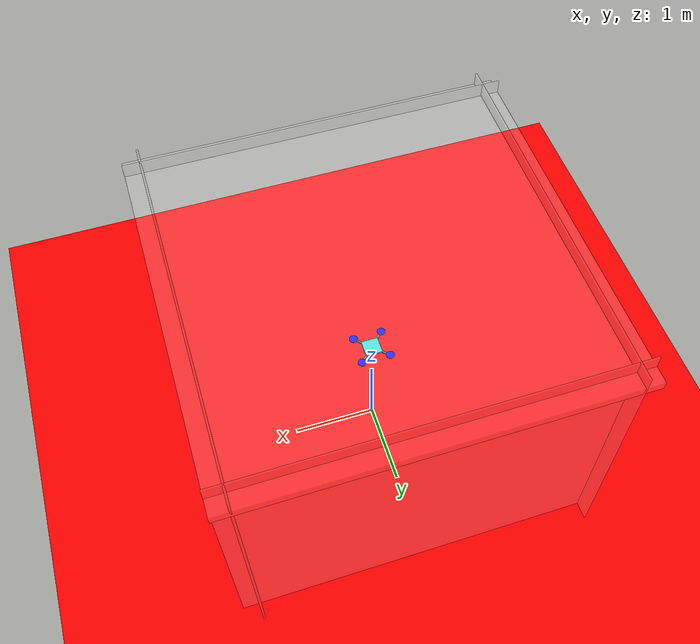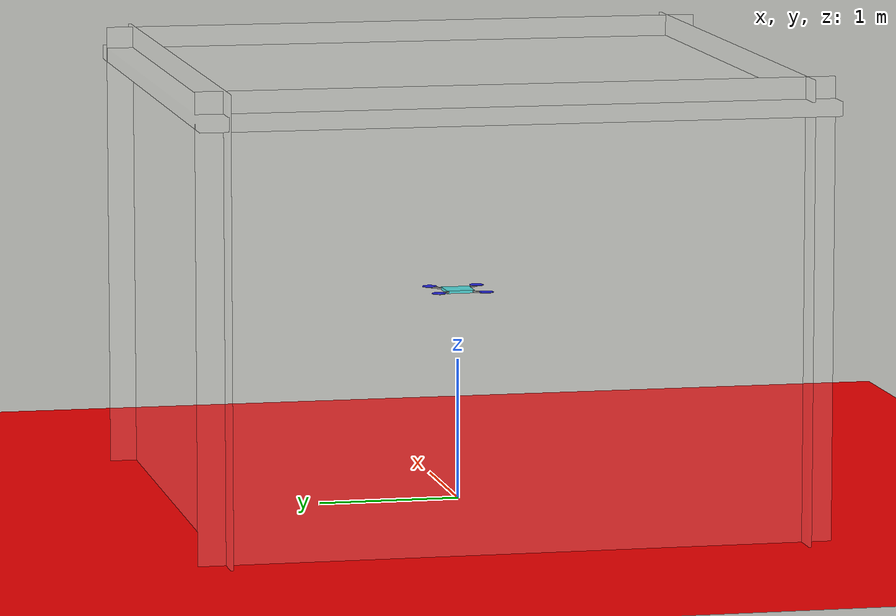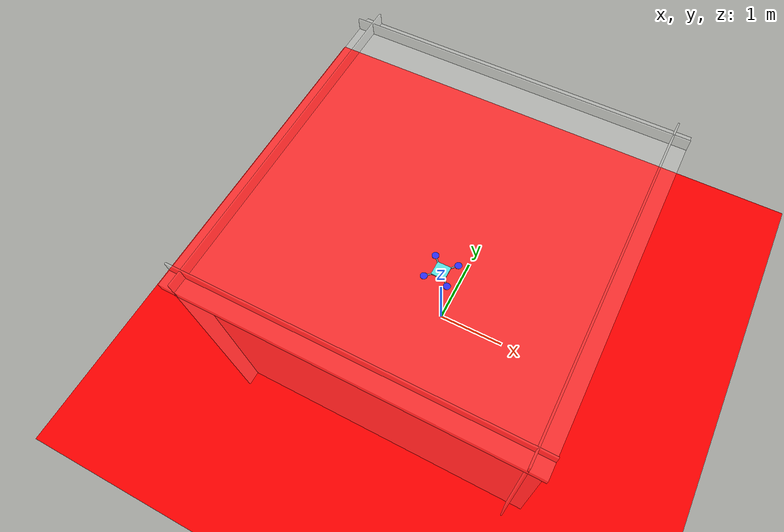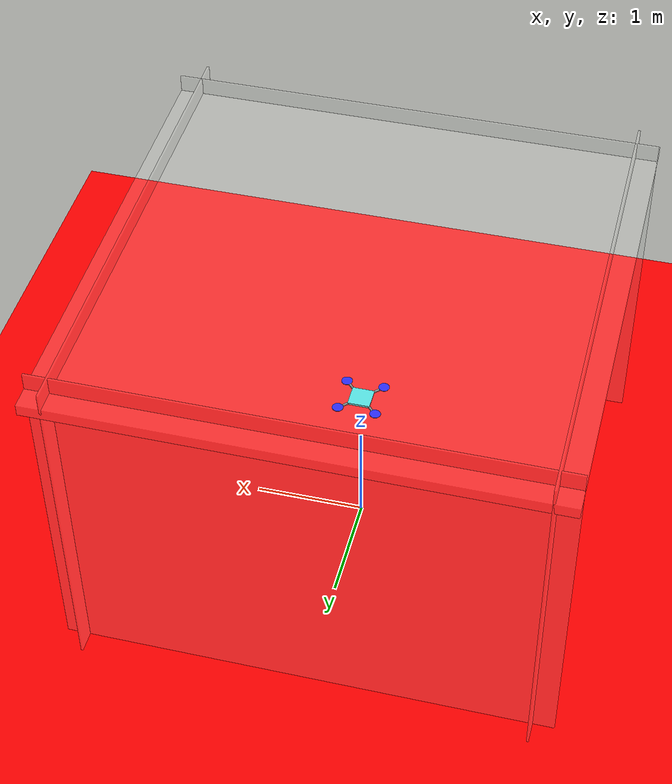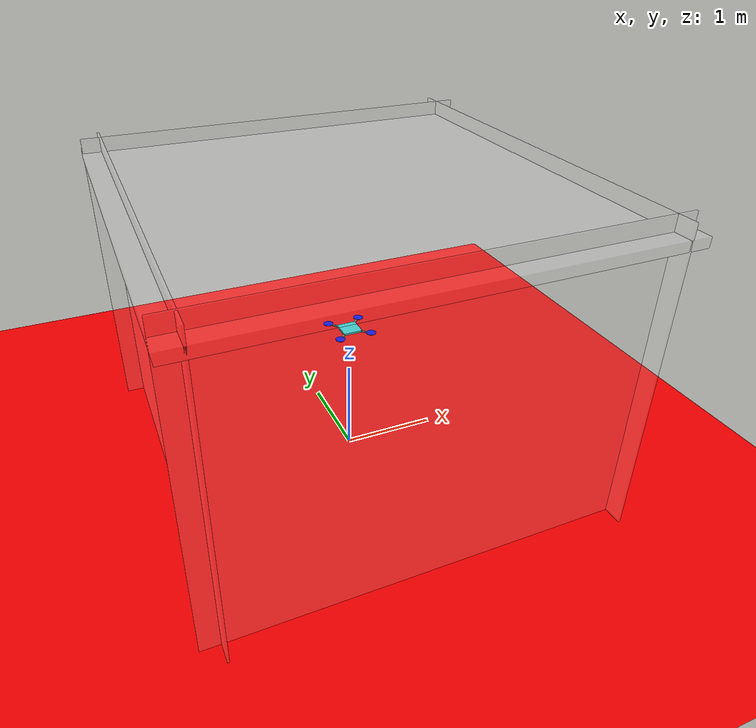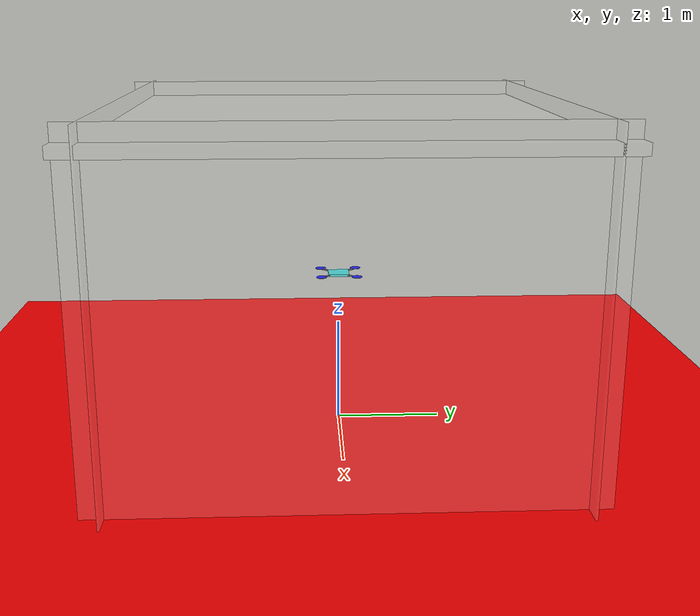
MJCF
<mujoco model="quadrotor">
    <compiler inertiafromgeom="true"/>
    <asset>
        <texture type="skybox" builtin="gradient" rgb1="1 1 1"
            rgb2=".6 .8 1" width="256" height="256"/>
    </asset>
    <visual>
        <global offwidth='1920' offheight='1080'/>
    </visual>
    <option timestep="0.01" density="1.2" gravity="0 0 -9.81"/>
    <worldbody>
        <light pos="5 5 6" dir="-1 -1 -1" castshadow="false" diffuse=".3 .3 .3"/>
        <light pos="-5 -5 6" dir="1 1 -1" castshadow="false" diffuse=".3 .3 .3"/>

        <geom name="floor" type="plane" size="5 5 .1" rgba="1 0 0 .5"/>

        <camera name="fixed_camera" mode="fixed" pos="-11 0 7" euler="0 -65 -90"/>

        <!-- Walls -->
        <body pos="0 0 3" name="roof">
            <geom type="box" size="2.2 2.2 .05" rgba="1 1 1 0.2"/>
        </body>
        <body pos="0 2 1.5" name="wall1">
            <geom type="box" size="2.2 0.01 1.7" rgba="1 1 1 0.2"/>
        </body>
        <body pos="0 -2 1.5" name="wall2">
            <geom type="box" size="2.2 0.01 1.7" rgba="1 1 1 0.2"/>
        </body>
        <body pos="2 0 1.5" name="wall3">
            <geom type="box" size="0.01 2.2 1.7" rgba="1 1 1 0.2"/>
        </body>
        <body pos="-2 0 1.5" name="wall4">
            <geom type="box" size="0.01 2.2 1.7" rgba="1 1 1 0.2"/>
        </body>

        <!-- Quadrotor -->
        <body pos="0 0 1.5" name="quad">
            <joint type="free" pos="0 0 0"/>
            <geom name="quadbody" type="box" size=".1 .1 .01" mass="0.1" rgba=".2 .9 .9 1"/>
            <site name="quadcenter" type="box" size=".001 .001 .003" rgba=".2 .9 .9 0"/>
            <site name="prox-n" group="3" type="box" pos=".1 0 0" size="0.001 .001 .003" euler="0 90 0" rgba="1 0 0 1"/>
            <site name="prox-s" group="3" type="box" pos="-.1 0 0" size="0.001 .001 .003" euler="0 -90 0" rgba="1 0 0 1"/>
            <site name="prox-e" group="3" type="box" pos="0 .1 0" size="0.001 .001 .003" euler="-90 0 0" rgba="1 0 0 1"/>
            <site name="prox-w" group="3" type="box" pos="0 -.1 0" size="0.001 .001 .003" euler="90 0 0" rgba="1 0 0 1"/>
            <site name="prox-top" group="3" type="box" pos="0 0 .01" size="0.001 .001 .003" rgba="1 0 0 1"/>
            <site name="prox-bot" group="3" type="box" pos="0 0 -.01" size=".001 .001 .003" euler="180 0 0" rgba="1 0 0 1"/>

            <body pos=".1 .1 0" name="quadarm1" euler="0 0 45">
                <geom name="arm1" type="box" pos="0 0 0" size=".1 .01 .005" mass=".01"/>
                <geom name="rotor1" type="cylinder" pos=".1 .0 0.005" size=".05 .002" rgba="0 0 1 1" mass="0.0025"/>
                <site name="motor1" type="cylinder" pos=".1 .0 0" size=".05 .002" rgba="0 0 0 0"/>
                <site name="prox-ne1" group="3" type="box" pos=".05 .01 0" size="0.001 .001 .001" euler="-90 0 0" rgba="1 0 0 1"/>
                <site name="prox-ne2" group="3" type="box" pos=".05 -.01 0" size="0.001 .001 .001" euler="90 0 0" rgba="1 0 0 1"/>
            </body>
            <body pos="-0.1 .1 0" name="quadarm2" euler="0 0 -45">
                <geom name='arm2' type="box" pos="0 0 0" size=".1 .01 .005" mass="0.01"/>
                <geom name="rotor2" type="cylinder" pos="-0.1 0 0.005" size=".05 .002" rgba="0 0 1 1" mass="0.0025"/>
                <site name="motor2" type="cylinder" pos="-0.1 0 0" size=".05 .002" rgba="0 0 0 0"/>
                <site name="prox-se1" group="3" type="box" pos="-.05 .01 0" size="0.001 .001 .001" euler="-90 0 0" rgba="1 0 0 1"/>
                <site name="prox-se2" group="3" type="box" pos="-.05 -.01 0" size="0.001 .001 .001" euler="90 0 0" rgba="1 0 0 1"/>
            </body>
            <body pos="-0.1 -0.1 0" name="quadarm3" euler="0 0 45">
                <geom name='arm3' type="box" pos="0 0 0" size="0.1 0.01 0.005" mass="0.01"/>
                <geom name="rotor3" type="cylinder" pos="-0.1 0 0.005" size=".05 .002" rgba="0 0 1 1" mass="0.0025"/>
                <site name="motor3" type="cylinder" pos="-0.1 0 0" size=".05 .002" rgba="0 0 0 0"/>
                <site name="prox-sw1" group="3" type="box" pos="-.05 .01 0" size="0.001 .001 .001" euler="-90 0 0" rgba="1 0 0 1"/>
                <site name="prox-sw2" group="3" type="box" pos="-.05 -.01 0" size="0.001 .001 .001" euler="90 0 0" rgba="1 0 0 1"/>
            </body>
            <body pos=".1 -0.1 0" name="quadarm4" euler="0 0 -45">
                <geom name='arm4' type="box" pos="0 0 0" size=".1 0.01 0.005" mass="0.01"/>
                <geom name="rotor4" type="cylinder" pos=".1 0 0.005" size=".05 .002" rgba="0 0 1 1" mass="0.0025"/>
                <site name="motor4" type="cylinder" pos=".1 0 0" size=".05 .002" rgba="0 0 0 0"/>
                <site name="prox-nw1" group="3" type="box" pos=".05 .01 0" size="0.001 .001 .001" euler="-90 0 0" rgba="1 0 0 1"/>
                <site name="prox-nw2" group="3" type="box" pos=".05 -.01 0" size="0.001 .001 .001" euler="90 0 0" rgba="1 0 0 1"/>
            </body>
        </body>
    </worldbody>

    <!-- Rotors -->
    <actuator>
        <motor ctrllimited="true" ctrlrange="0.0 1.0" gear="0 0. 1. 0. 0. -0.1" site="motor1"/>
        <motor ctrllimited="true" ctrlrange="0.0 1.0" gear="0 0. 1. 0. 0. 0.1" site="motor2"/>
        <motor ctrllimited="true" ctrlrange="0.0 1.0" gear="0 0. 1. 0. 0. -0.1" site="motor3"/>
        <motor ctrllimited="true" ctrlrange="0.0 1.0" gear="0 0. 1. 0. 0. 0.1" site="motor4"/>
    </actuator>

    <!-- Proximity Sensors -->
    <sensor>
        <accelerometer name='acc' site="quadcenter"/>
        <gyro name='gyro' site="quadcenter"/>
        <rangefinder name="prox-n" cutoff="3" site="prox-n"/>
        <rangefinder cutoff="3" site="prox-s"/>
        <rangefinder cutoff="3" site="prox-e"/>
        <rangefinder cutoff="3" site="prox-w"/>
        <rangefinder cutoff="3" site="prox-top"/>
        <rangefinder cutoff="3" site="prox-bot"/>
        <rangefinder cutoff="3" site="prox-ne1"/>
        <rangefinder cutoff="3" site="prox-ne2"/>
        <rangefinder cutoff="3" site="prox-se1"/>
        <rangefinder cutoff="3" site="prox-se2"/>
        <rangefinder cutoff="3" site="prox-sw1"/>
        <rangefinder cutoff="3" site="prox-sw2"/>
        <rangefinder cutoff="3" site="prox-nw1"/>
        <rangefinder name='prox-nw2' cutoff="3" site="prox-nw2"/>
    </sensor>

    <!-- Collisions between walls and roof is excluded from calculation -->
    <!-- This should prevent unnecessary computation -->
    <contact>
        <exclude body1="roof" body2="wall1"/>
        <exclude body1="roof" body2="wall2"/>
        <exclude body1="roof" body2="wall3"/>
        <exclude body1="roof" body2="wall4"/>
        <exclude body1="wall1" body2="wall3"/>
        <exclude body1="wall1" body2="wall4"/>
        <exclude body1="wall4" body2="wall2"/>
        <exclude body1="wall3" body2="wall2"/>
        <exclude body1="quad" body2="quadarm1"/>
        <exclude body1="quad" body2="quadarm2"/>
        <exclude body1="quad" body2="quadarm3"/>
        <exclude body1="quad" body2="quadarm4"/>
    </contact>
</mujoco>
